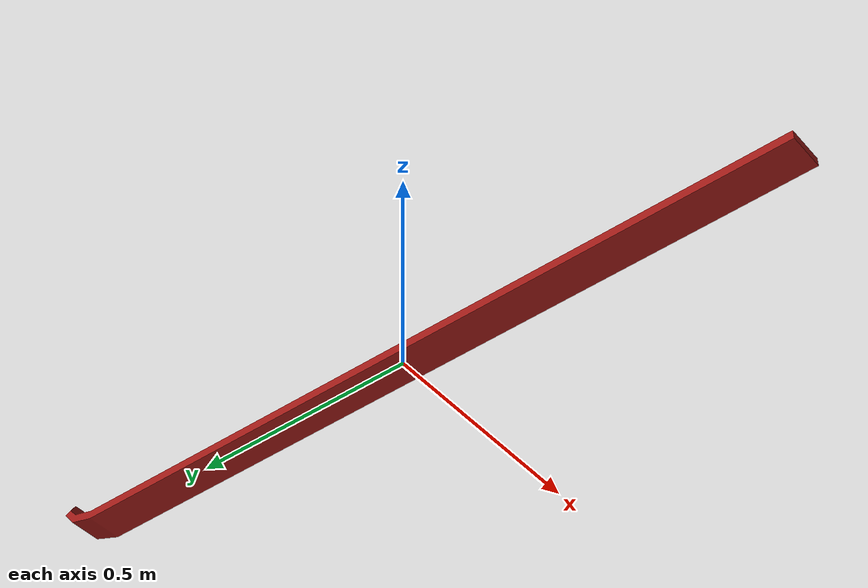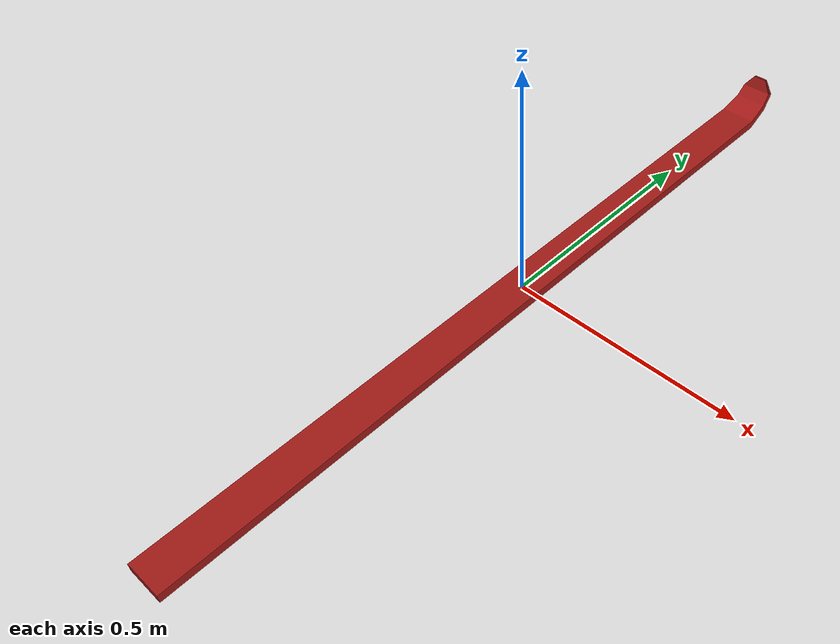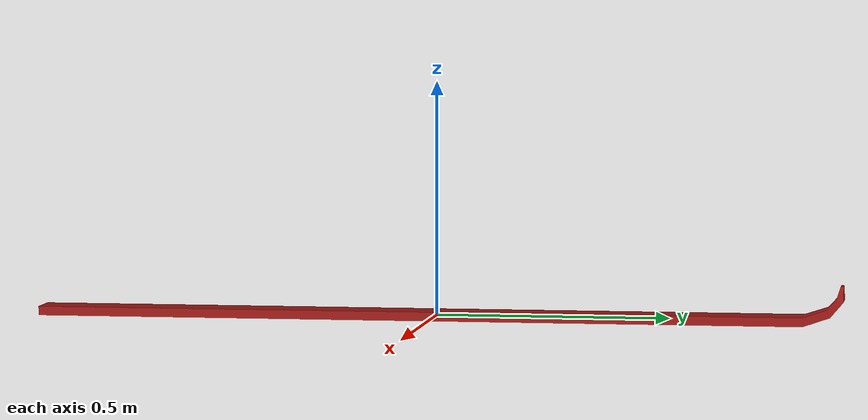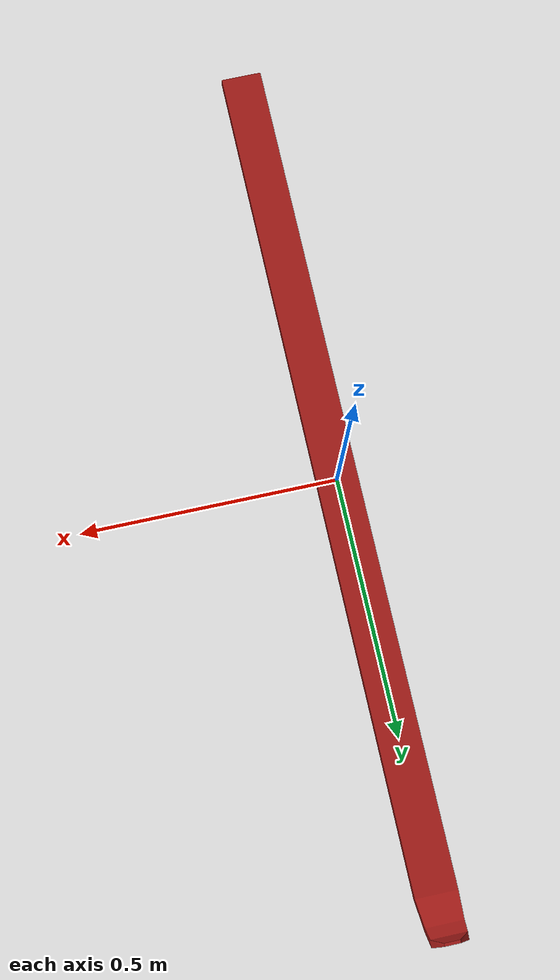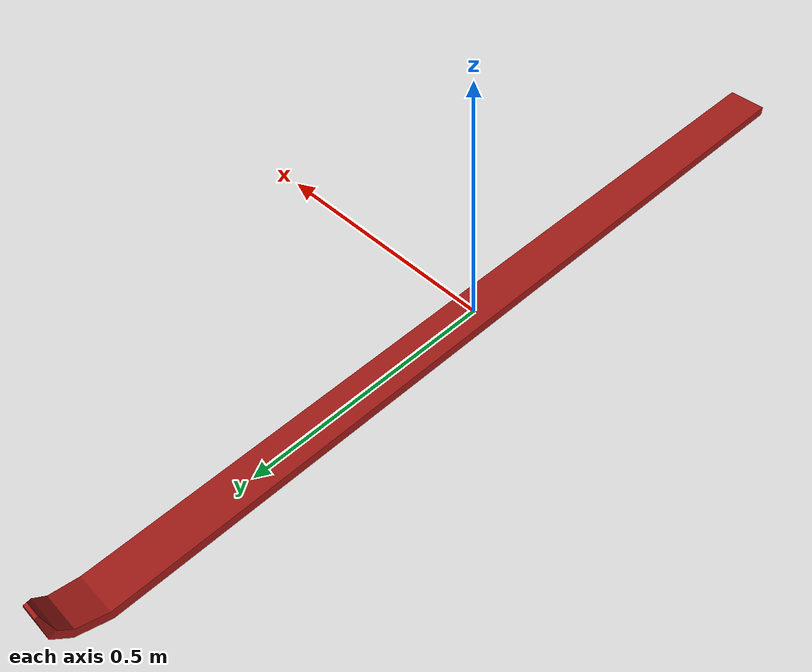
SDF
<?xml version="1.0" ?>

<sdf version="1.4">
  <model name="skis">
    <static>true</static>
    <link name="skis">
      <collision name="collision">
	<geometry>
            <mesh>
	      <uri>model://skis/skis.dae</uri>
	    </mesh>
          </geometry>
      </collision>
      <visual name="vis">
        <cast_shadows>false</cast_shadows>

	<geometry>
            <mesh>
	      <uri>model://skis/skis.dae</uri>
	    </mesh>
          </geometry>
      </visual>

    </link>
          <plugin name="scanable"
              filename="libiai_object_transmitter.so">
            <object_type>terrain</object_type><!-- this is used to determine -->
            <absolute_detection>true</absolute_detection>
            <attribute key="otype" value="skis"/>
            <attribute key="manmade" value="true"/>
            <attribute key="navigation" value="inner"/>
      </plugin>
  </model>
</sdf>
